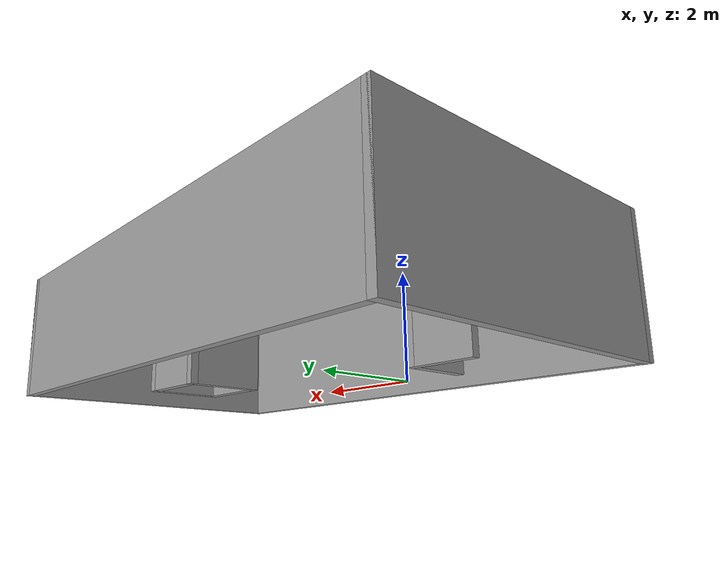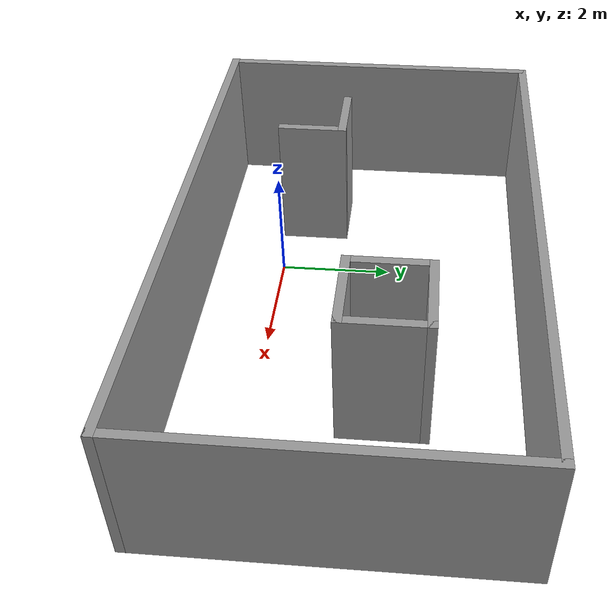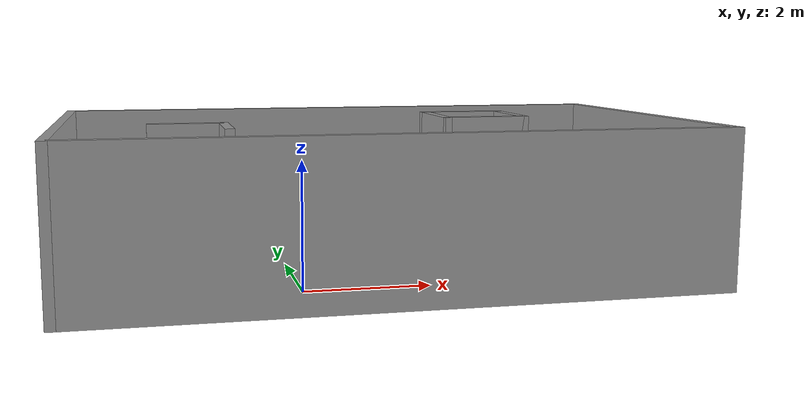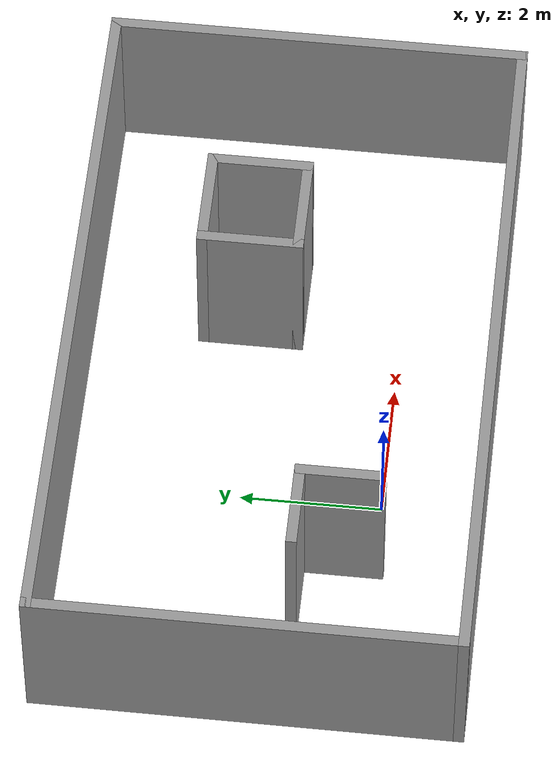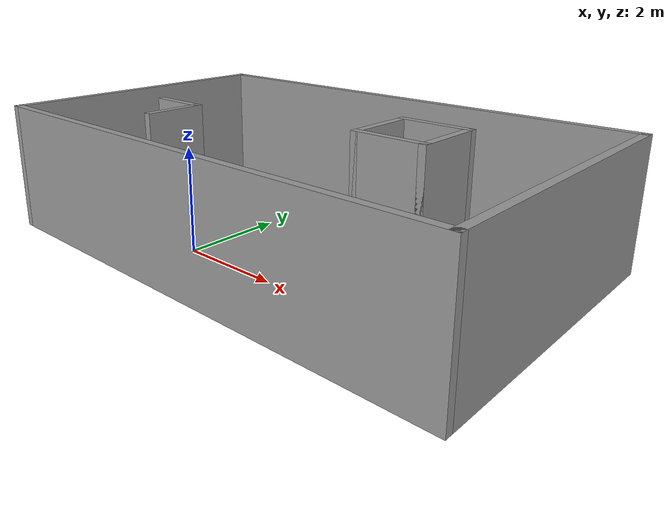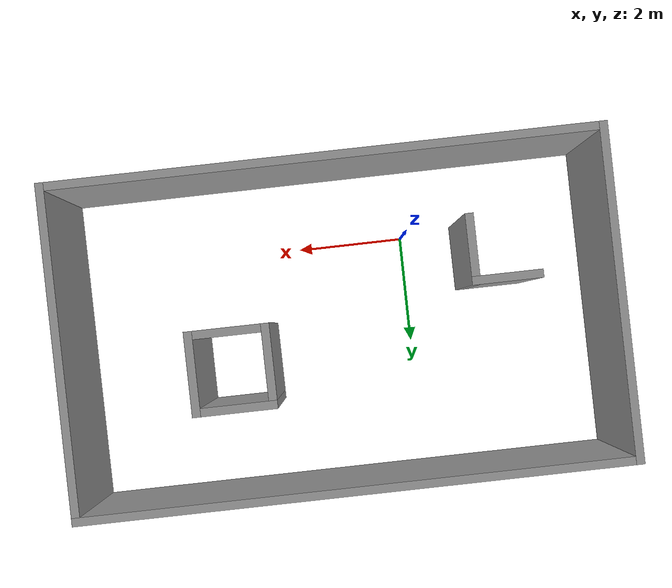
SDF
<?xml version='1.0'?>
<sdf version='1.6'>
  <model name='room3'>
    <pose frame=''>1.375 1.535 0 0 -0 0</pose>
    <link name='Wall_0'>
      <collision name='Wall_0_Collision'>
        <geometry>
          <box>
            <size>6 0.15 2.5</size>
          </box>
        </geometry>
        <pose frame=''>0 0 1.25 0 -0 0</pose>
      </collision>
      <visual name='Wall_0_Visual'>
        <pose frame=''>0 0 1.25 0 -0 0</pose>
        <geometry>
          <box>
            <size>6 0.15 2.5</size>
          </box>
        </geometry>
        <material>
          <script>
            <uri>file://media/materials/scripts/gazebo.material</uri>
            <name>Gazebo/Grey</name>
          </script>
          <ambient>1 1 1 1</ambient>
        </material>
        <meta>
          <layer>0</layer>
        </meta>
      </visual>
      <pose frame=''>-4.925 0 0 0 -0 1.5708</pose>
    </link>
    <link name='Wall_1'>
      <collision name='Wall_1_Collision'>
        <geometry>
          <box>
            <size>10 0.15 2.5</size>
          </box>
        </geometry>
        <pose frame=''>0 0 1.25 0 -0 0</pose>
      </collision>
      <visual name='Wall_1_Visual'>
        <pose frame=''>0 0 1.25 0 -0 0</pose>
        <geometry>
          <box>
            <size>10 0.15 2.5</size>
          </box>
        </geometry>
        <material>
          <script>
            <uri>file://media/materials/scripts/gazebo.material</uri>
            <name>Gazebo/Grey</name>
          </script>
          <ambient>1 1 1 1</ambient>
        </material>
        <meta>
          <layer>0</layer>
        </meta>
      </visual>
      <pose frame=''>-0 2.925 0 0 -0 0</pose>
    </link>
    <link name='Wall_10'>
      <collision name='Wall_10_Collision'>
        <geometry>
          <box>
            <size>1.5 0.15 2.5</size>
          </box>
        </geometry>
        <pose frame=''>0 0 1.25 0 -0 0</pose>
      </collision>
      <visual name='Wall_10_Visual'>
        <pose frame=''>0 0 1.25 0 -0 0</pose>
        <geometry>
          <box>
            <size>1.5 0.15 2.5</size>
          </box>
        </geometry>
        <material>
          <script>
            <uri>file://media/materials/scripts/gazebo.material</uri>
            <name>Gazebo/Grey</name>
          </script>
          <ambient>1 1 1 1</ambient>
        </material>
        <meta>
          <layer>0</layer>
        </meta>
      </visual>
      <pose frame=''>2.64634 0.597563 0 0 -0 1.5708</pose>
    </link>
    <link name='Wall_11'>
      <collision name='Wall_11_Collision'>
        <geometry>
          <box>
            <size>1.5 0.15 2.5</size>
          </box>
        </geometry>
        <pose frame=''>0 0 1.25 0 -0 0</pose>
      </collision>
      <visual name='Wall_11_Visual'>
        <pose frame=''>0 0 1.25 0 -0 0</pose>
        <geometry>
          <box>
            <size>1.5 0.15 2.5</size>
          </box>
        </geometry>
        <material>
          <script>
            <uri>file://media/materials/scripts/gazebo.material</uri>
            <name>Gazebo/Grey</name>
          </script>
          <ambient>1 1 1 1</ambient>
        </material>
        <meta>
          <layer>0</layer>
        </meta>
      </visual>
      <pose frame=''>1.97134 1.27256 0 0 -0 3.14159</pose>
    </link>
    <link name='Wall_2'>
      <collision name='Wall_2_Collision'>
        <geometry>
          <box>
            <size>6 0.15 2.5</size>
          </box>
        </geometry>
        <pose frame=''>0 0 1.25 0 -0 0</pose>
      </collision>
      <visual name='Wall_2_Visual'>
        <pose frame=''>0 0 1.25 0 -0 0</pose>
        <geometry>
          <box>
            <size>6 0.15 2.5</size>
          </box>
        </geometry>
        <material>
          <script>
            <uri>file://media/materials/scripts/gazebo.material</uri>
            <name>Gazebo/Grey</name>
          </script>
          <ambient>1 1 1 1</ambient>
        </material>
        <meta>
          <layer>0</layer>
        </meta>
      </visual>
      <pose frame=''>4.925 0 0 0 -0 -1.5708</pose>
    </link>
    <link name='Wall_3'>
      <collision name='Wall_3_Collision'>
        <geometry>
          <box>
            <size>10 0.15 2.5</size>
          </box>
        </geometry>
        <pose frame=''>0 0 1.25 0 -0 0</pose>
      </collision>
      <visual name='Wall_3_Visual'>
        <pose frame=''>0 0 1.25 0 -0 0</pose>
        <geometry>
          <box>
            <size>10 0.15 2.5</size>
          </box>
        </geometry>
        <material>
          <script>
            <uri>file://media/materials/scripts/gazebo.material</uri>
            <name>Gazebo/Grey</name>
          </script>
          <ambient>1 1 1 1</ambient>
        </material>
        <meta>
          <layer>0</layer>
        </meta>
      </visual>
      <pose frame=''>-0 -2.925 0 0 -0 3.14159</pose>
    </link>
    <link name='Wall_5'>
      <collision name='Wall_5_Collision'>
        <geometry>
          <box>
            <size>1.25 0.15 2.5</size>
          </box>
        </geometry>
        <pose frame=''>0 0 1.25 0 -0 0</pose>
      </collision>
      <visual name='Wall_5_Visual'>
        <pose frame=''>0 0 1.25 0 -0 0</pose>
        <geometry>
          <box>
            <size>1.25 0.15 2.5</size>
          </box>
        </geometry>
        <material>
          <script>
            <uri>file://media/materials/scripts/gazebo.material</uri>
            <name>Gazebo/Grey</name>
          </script>
          <ambient>1 1 1 1</ambient>
        </material>
        <meta>
          <layer>0</layer>
        </meta>
      </visual>
      <pose frame=''>-2.98796 -0.485363 0 0 -0 0</pose>
    </link>
    <link name='Wall_6'>
      <collision name='Wall_6_Collision'>
        <geometry>
          <box>
            <size>1.25 0.15 2.5</size>
          </box>
        </geometry>
        <pose frame=''>0 0 1.25 0 -0 0</pose>
      </collision>
      <visual name='Wall_6_Visual'>
        <pose frame=''>0 0 1.25 0 -0 0</pose>
        <geometry>
          <box>
            <size>1.25 0.15 2.5</size>
          </box>
        </geometry>
        <material>
          <script>
            <uri>file://media/materials/scripts/gazebo.material</uri>
            <name>Gazebo/Grey</name>
          </script>
          <ambient>1 1 1 1</ambient>
        </material>
        <meta>
          <layer>0</layer>
        </meta>
      </visual>
      <pose frame=''>-2.43796 -1.03536 0 0 -0 -1.5708</pose>
    </link>
    <link name='Wall_8'>
      <collision name='Wall_8_Collision'>
        <geometry>
          <box>
            <size>1.5 0.15 2.5</size>
          </box>
        </geometry>
        <pose frame=''>0 0 1.25 0 -0 0</pose>
      </collision>
      <visual name='Wall_8_Visual'>
        <pose frame=''>0 0 1.25 0 -0 0</pose>
        <geometry>
          <box>
            <size>1.5 0.15 2.5</size>
          </box>
        </geometry>
        <material>
          <script>
            <uri>file://media/materials/scripts/gazebo.material</uri>
            <name>Gazebo/Grey</name>
          </script>
          <ambient>1 1 1 1</ambient>
        </material>
        <meta>
          <layer>0</layer>
        </meta>
      </visual>
      <pose frame=''>1.29634 0.597563 0 0 -0 -1.5708</pose>
    </link>
    <link name='Wall_9'>
      <collision name='Wall_9_Collision'>
        <geometry>
          <box>
            <size>1.5 0.15 2.5</size>
          </box>
        </geometry>
        <pose frame=''>0 0 1.25 0 -0 0</pose>
      </collision>
      <visual name='Wall_9_Visual'>
        <pose frame=''>0 0 1.25 0 -0 0</pose>
        <geometry>
          <box>
            <size>1.5 0.15 2.5</size>
          </box>
        </geometry>
        <material>
          <script>
            <uri>file://media/materials/scripts/gazebo.material</uri>
            <name>Gazebo/Grey</name>
          </script>
          <ambient>1 1 1 1</ambient>
        </material>
        <meta>
          <layer>0</layer>
        </meta>
      </visual>
      <pose frame=''>1.97134 -0.077437 0 0 -0 0</pose>
    </link>
    <static>1</static>
  </model>
</sdf>
